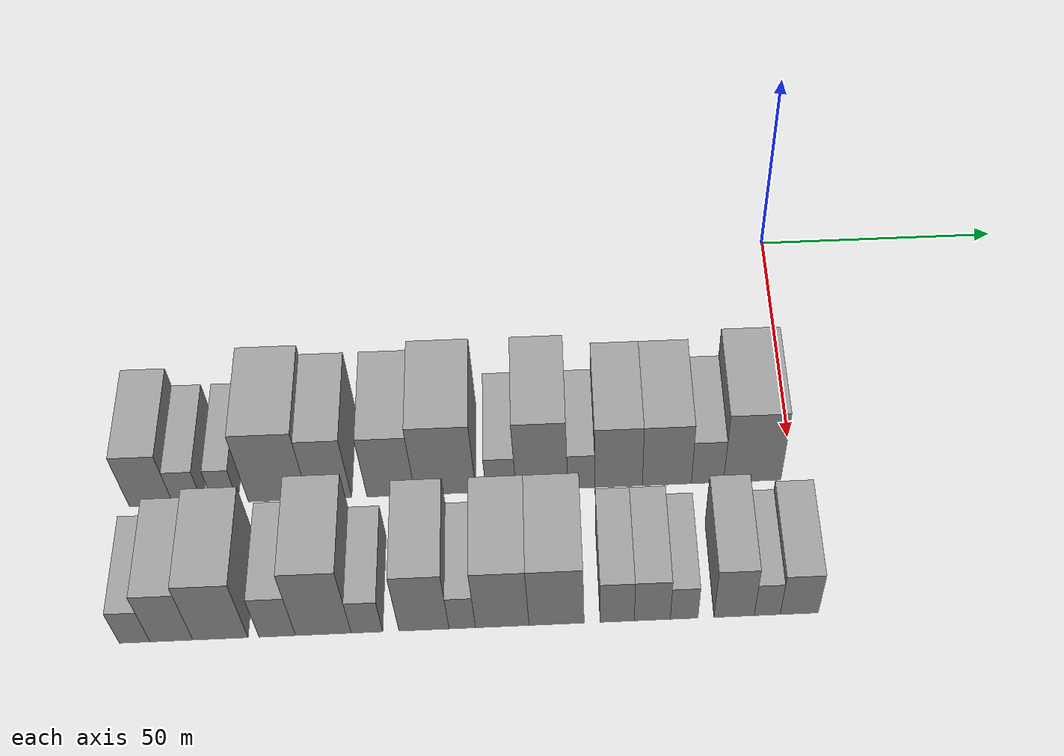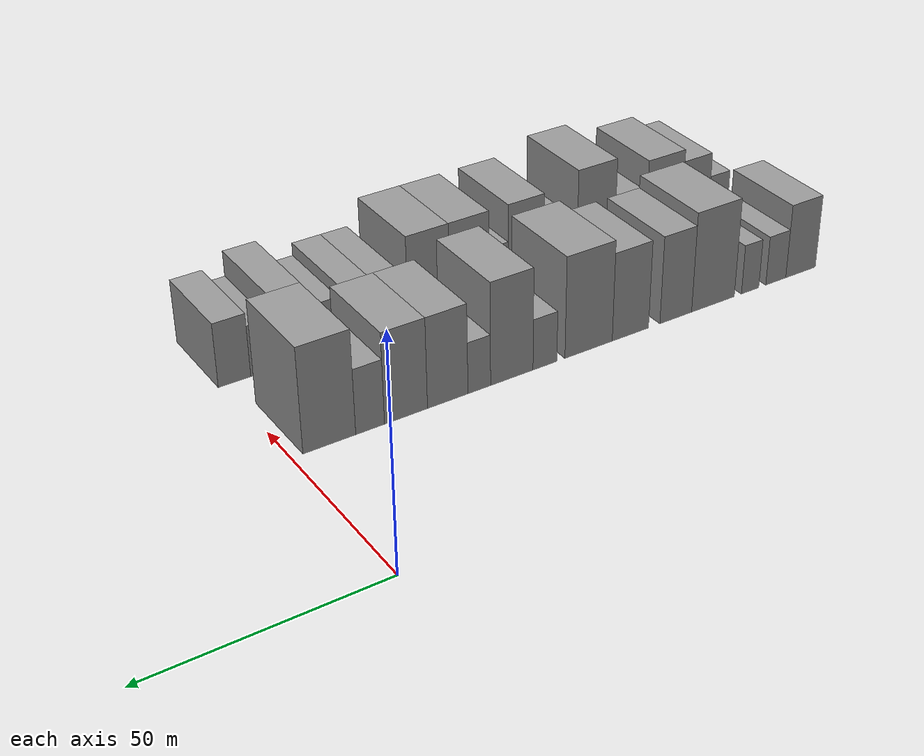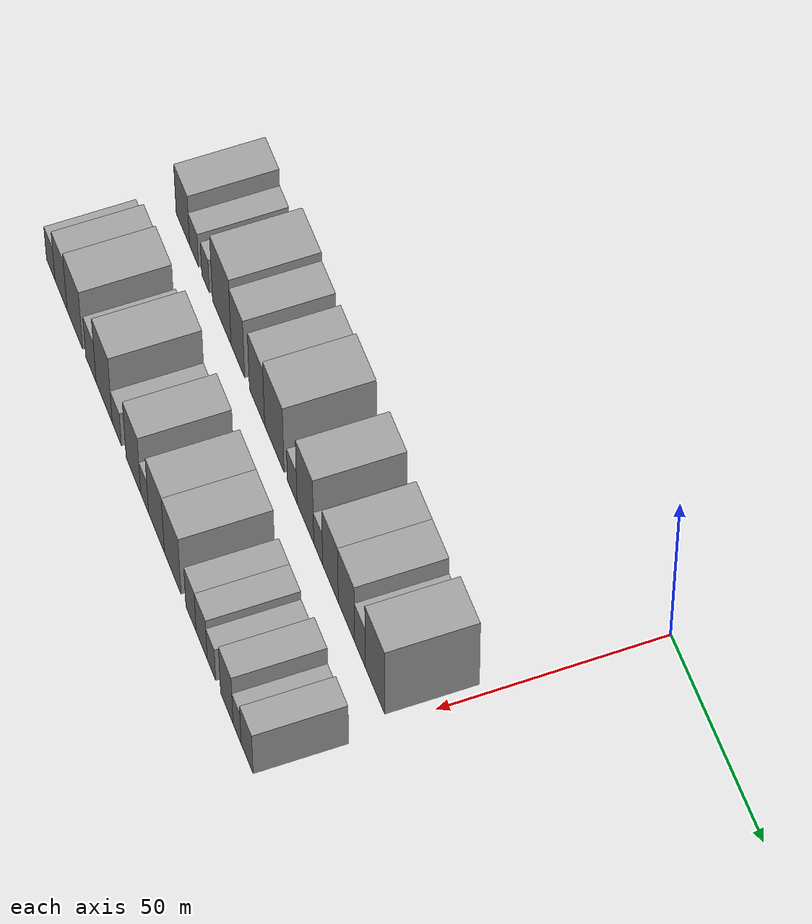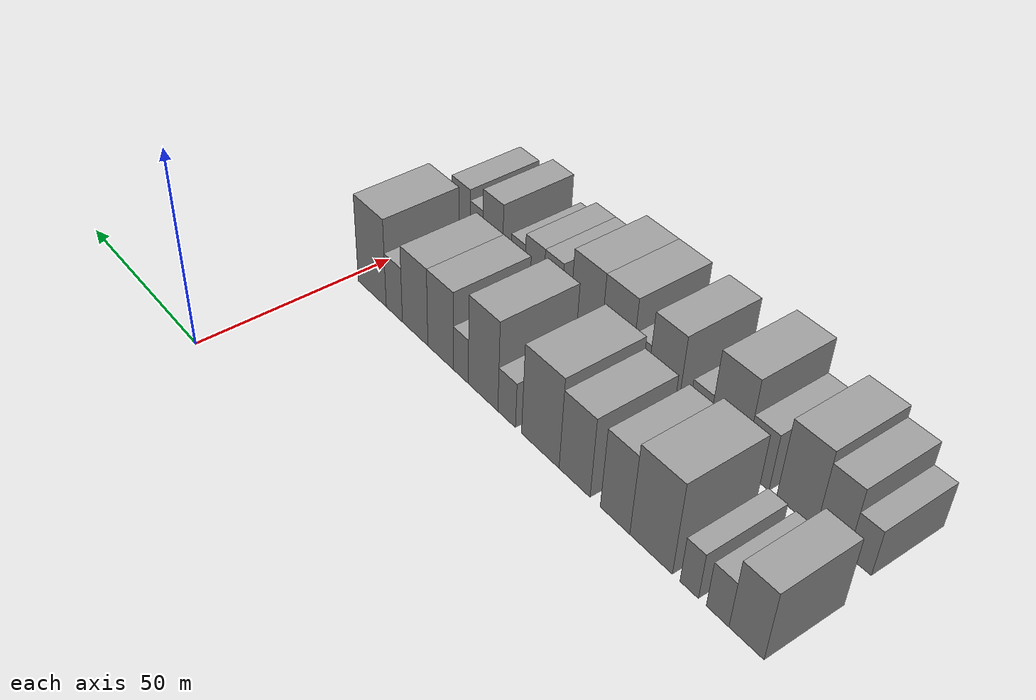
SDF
<sdf version="1.6">
 <world name="default">
  <model name="building_13">
   <static>1</static>
   <pose>50.0000 -125.9835 0 0.000000 0.000000 0.000000</pose>
   <link name="link">
    <pose>0 0 9.00 0 0 0</pose>
    <collision name="collision"><geometry><box><size>20.0000 8.5806 18.0000</size></box></geometry></collision>
    <visual name="visual">
     <cast_shadows>0</cast_shadows>
     <geometry><box><size>20.0000 8.5806 18.0000</size></box></geometry>
     <material>
      <script>
       <uri>model://grey_wall/materials/scripts</uri>
       <uri>model://grey_wall/materials/textures</uri>
       <name>vrc/grey_wall</name>
      </script>
     </material>
    </visual>
   </link>
  </model>
  <model name="building_14">
   <static>1</static>
   <pose>50.0000 -118.8375 0 0.000000 0.000000 0.000000</pose>
   <link name="link">
    <pose>0 0 6.00 0 0 0</pose>
    <collision name="collision"><geometry><box><size>20.0000 5.7114 12.0000</size></box></geometry></collision>
    <visual name="visual">
     <cast_shadows>0</cast_shadows>
     <geometry><box><size>20.0000 5.7114 12.0000</size></box></geometry>
     <material>
      <script>
       <uri>model://grey_wall/materials/scripts</uri>
       <uri>model://grey_wall/materials/textures</uri>
       <name>vrc/grey_wall</name>
      </script>
     </material>
    </visual>
   </link>
  </model>
  <model name="building_15">
   <static>1</static>
   <pose>50.0000 -111.5586 0 0.000000 0.000000 0.000000</pose>
   <link name="link">
    <pose>0 0 6.00 0 0 0</pose>
    <collision name="collision"><geometry><box><size>20.0000 4.8464 12.0000</size></box></geometry></collision>
    <visual name="visual">
     <cast_shadows>0</cast_shadows>
     <geometry><box><size>20.0000 4.8464 12.0000</size></box></geometry>
     <material>
      <script>
       <uri>model://grey_wall/materials/scripts</uri>
       <uri>model://grey_wall/materials/textures</uri>
       <name>vrc/grey_wall</name>
      </script>
     </material>
    </visual>
   </link>
  </model>
  <model name="building_16">
   <static>1</static>
   <pose>50.0000 -101.2901 0 0.000000 0.000000 0.000000</pose>
   <link name="link">
    <pose>0 0 12.00 0 0 0</pose>
    <collision name="collision"><geometry><box><size>20.0000 11.6907 24.0000</size></box></geometry></collision>
    <visual name="visual">
     <cast_shadows>0</cast_shadows>
     <geometry><box><size>20.0000 11.6907 24.0000</size></box></geometry>
     <material>
      <script>
       <uri>model://grey_wall/materials/scripts</uri>
       <uri>model://grey_wall/materials/textures</uri>
       <name>vrc/grey_wall</name>
      </script>
     </material>
    </visual>
   </link>
  </model>
  <model name="building_17">
   <static>1</static>
   <pose>50.0000 -91.2035 0 0.000000 0.000000 0.000000</pose>
   <link name="link">
    <pose>0 0 10.50 0 0 0</pose>
    <collision name="collision"><geometry><box><size>20.0000 8.4825 21.0000</size></box></geometry></collision>
    <visual name="visual">
     <cast_shadows>0</cast_shadows>
     <geometry><box><size>20.0000 8.4825 21.0000</size></box></geometry>
     <material>
      <script>
       <uri>model://grey_wall/materials/scripts</uri>
       <uri>model://grey_wall/materials/textures</uri>
       <name>vrc/grey_wall</name>
      </script>
     </material>
    </visual>
   </link>
  </model>
  <model name="building_18">
   <static>1</static>
   <pose>50.0000 -79.2576 0 0.000000 0.000000 0.000000</pose>
   <link name="link">
    <pose>0 0 10.50 0 0 0</pose>
    <collision name="collision"><geometry><box><size>20.0000 9.4094 21.0000</size></box></geometry></collision>
    <visual name="visual">
     <cast_shadows>0</cast_shadows>
     <geometry><box><size>20.0000 9.4094 21.0000</size></box></geometry>
     <material>
      <script>
       <uri>model://grey_wall/materials/scripts</uri>
       <uri>model://grey_wall/materials/textures</uri>
       <name>vrc/grey_wall</name>
      </script>
     </material>
    </visual>
   </link>
  </model>
  <model name="building_19">
   <static>1</static>
   <pose>50.0000 -68.5814 0 0.000000 0.000000 0.000000</pose>
   <link name="link">
    <pose>0 0 12.00 0 0 0</pose>
    <collision name="collision"><geometry><box><size>20.0000 11.9430 24.0000</size></box></geometry></collision>
    <visual name="visual">
     <cast_shadows>0</cast_shadows>
     <geometry><box><size>20.0000 11.9430 24.0000</size></box></geometry>
     <material>
      <script>
       <uri>model://grey_wall/materials/scripts</uri>
       <uri>model://grey_wall/materials/textures</uri>
       <name>vrc/grey_wall</name>
      </script>
     </material>
    </visual>
   </link>
  </model>
  <model name="building_20">
   <static>1</static>
   <pose>50.0000 -57.6788 0 0.000000 0.000000 0.000000</pose>
   <link name="link">
    <pose>0 0 6.00 0 0 0</pose>
    <collision name="collision"><geometry><box><size>20.0000 5.8621 12.0000</size></box></geometry></collision>
    <visual name="visual">
     <cast_shadows>0</cast_shadows>
     <geometry><box><size>20.0000 5.8621 12.0000</size></box></geometry>
     <material>
      <script>
       <uri>model://grey_wall/materials/scripts</uri>
       <uri>model://grey_wall/materials/textures</uri>
       <name>vrc/grey_wall</name>
      </script>
     </material>
    </visual>
   </link>
  </model>
  <model name="building_21">
   <static>1</static>
   <pose>50.0000 -49.6550 0 0.000000 0.000000 0.000000</pose>
   <link name="link">
    <pose>0 0 12.00 0 0 0</pose>
    <collision name="collision"><geometry><box><size>20.0000 10.1855 24.0000</size></box></geometry></collision>
    <visual name="visual">
     <cast_shadows>0</cast_shadows>
     <geometry><box><size>20.0000 10.1855 24.0000</size></box></geometry>
     <material>
      <script>
       <uri>model://grey_wall/materials/scripts</uri>
       <uri>model://grey_wall/materials/textures</uri>
       <name>vrc/grey_wall</name>
      </script>
     </material>
    </visual>
   </link>
  </model>
  <model name="building_22">
   <static>1</static>
   <pose>50.0000 -41.8930 0 0.000000 0.000000 0.000000</pose>
   <link name="link">
    <pose>0 0 6.00 0 0 0</pose>
    <collision name="collision"><geometry><box><size>20.0000 5.3385 12.0000</size></box></geometry></collision>
    <visual name="visual">
     <cast_shadows>0</cast_shadows>
     <geometry><box><size>20.0000 5.3385 12.0000</size></box></geometry>
     <material>
      <script>
       <uri>model://grey_wall/materials/scripts</uri>
       <uri>model://grey_wall/materials/textures</uri>
       <name>vrc/grey_wall</name>
      </script>
     </material>
    </visual>
   </link>
  </model>
  <model name="building_23">
   <static>1</static>
   <pose>50.0000 -34.5507 0 0.000000 0.000000 0.000000</pose>
   <link name="link">
    <pose>0 0 10.50 0 0 0</pose>
    <collision name="collision"><geometry><box><size>20.0000 9.3463 21.0000</size></box></geometry></collision>
    <visual name="visual">
     <cast_shadows>0</cast_shadows>
     <geometry><box><size>20.0000 9.3463 21.0000</size></box></geometry>
     <material>
      <script>
       <uri>model://grey_wall/materials/scripts</uri>
       <uri>model://grey_wall/materials/textures</uri>
       <name>vrc/grey_wall</name>
      </script>
     </material>
    </visual>
   </link>
  </model>
  <model name="building_24">
   <static>1</static>
   <pose>50.0000 -25.0386 0 0.000000 0.000000 0.000000</pose>
   <link name="link">
    <pose>0 0 10.50 0 0 0</pose>
    <collision name="collision"><geometry><box><size>20.0000 9.6778 21.0000</size></box></geometry></collision>
    <visual name="visual">
     <cast_shadows>0</cast_shadows>
     <geometry><box><size>20.0000 9.6778 21.0000</size></box></geometry>
     <material>
      <script>
       <uri>model://grey_wall/materials/scripts</uri>
       <uri>model://grey_wall/materials/textures</uri>
       <name>vrc/grey_wall</name>
      </script>
     </material>
    </visual>
   </link>
  </model>
  <model name="building_25">
   <static>1</static>
   <pose>50.0000 -17.0260 0 0.000000 0.000000 0.000000</pose>
   <link name="link">
    <pose>0 0 7.50 0 0 0</pose>
    <collision name="collision"><geometry><box><size>20.0000 6.3474 15.0000</size></box></geometry></collision>
    <visual name="visual">
     <cast_shadows>0</cast_shadows>
     <geometry><box><size>20.0000 6.3474 15.0000</size></box></geometry>
     <material>
      <script>
       <uri>model://grey_wall/materials/scripts</uri>
       <uri>model://grey_wall/materials/textures</uri>
       <name>vrc/grey_wall</name>
      </script>
     </material>
    </visual>
   </link>
  </model>
  <model name="building_26">
   <static>1</static>
   <pose>50.0000 -8.1673 0 0.000000 0.000000 0.000000</pose>
   <link name="link">
    <pose>0 0 12.00 0 0 0</pose>
    <collision name="collision"><geometry><box><size>20.0000 11.3700 24.0000</size></box></geometry></collision>
    <visual name="visual">
     <cast_shadows>0</cast_shadows>
     <geometry><box><size>20.0000 11.3700 24.0000</size></box></geometry>
     <material>
      <script>
       <uri>model://grey_wall/materials/scripts</uri>
       <uri>model://grey_wall/materials/textures</uri>
       <name>vrc/grey_wall</name>
      </script>
     </material>
    </visual>
   </link>
  </model>
  <model name="building_74">
   <static>1</static>
   <pose>79.0000 -125.7830 0 0.000000 0.000000 0.000000</pose>
   <link name="link">
    <pose>0 0 6.00 0 0 0</pose>
    <collision name="collision"><geometry><box><size>20.0000 5.6460 12.0000</size></box></geometry></collision>
    <visual name="visual">
     <cast_shadows>0</cast_shadows>
     <geometry><box><size>20.0000 5.6460 12.0000</size></box></geometry>
     <material>
      <script>
       <uri>model://grey_wall/materials/scripts</uri>
       <uri>model://grey_wall/materials/textures</uri>
       <name>vrc/grey_wall</name>
      </script>
     </material>
    </visual>
   </link>
  </model>
  <model name="building_75">
   <static>1</static>
   <pose>79.0000 -119.0131 0 0.000000 0.000000 0.000000</pose>
   <link name="link">
    <pose>0 0 9.00 0 0 0</pose>
    <collision name="collision"><geometry><box><size>20.0000 7.8937 18.0000</size></box></geometry></collision>
    <visual name="visual">
     <cast_shadows>0</cast_shadows>
     <geometry><box><size>20.0000 7.8937 18.0000</size></box></geometry>
     <material>
      <script>
       <uri>model://grey_wall/materials/scripts</uri>
       <uri>model://grey_wall/materials/textures</uri>
       <name>vrc/grey_wall</name>
      </script>
     </material>
    </visual>
   </link>
  </model>
  <model name="building_76">
   <static>1</static>
   <pose>79.0000 -109.9778 0 0.000000 0.000000 0.000000</pose>
   <link name="link">
    <pose>0 0 10.50 0 0 0</pose>
    <collision name="collision"><geometry><box><size>20.0000 10.1770 21.0000</size></box></geometry></collision>
    <visual name="visual">
     <cast_shadows>0</cast_shadows>
     <geometry><box><size>20.0000 10.1770 21.0000</size></box></geometry>
     <material>
      <script>
       <uri>model://grey_wall/materials/scripts</uri>
       <uri>model://grey_wall/materials/textures</uri>
       <name>vrc/grey_wall</name>
      </script>
     </material>
    </visual>
   </link>
  </model>
  <model name="building_77">
   <static>1</static>
   <pose>79.0000 -99.5044 0 0.000000 0.000000 0.000000</pose>
   <link name="link">
    <pose>0 0 7.50 0 0 0</pose>
    <collision name="collision"><geometry><box><size>20.0000 6.7697 15.0000</size></box></geometry></collision>
    <visual name="visual">
     <cast_shadows>0</cast_shadows>
     <geometry><box><size>20.0000 6.7697 15.0000</size></box></geometry>
     <material>
      <script>
       <uri>model://grey_wall/materials/scripts</uri>
       <uri>model://grey_wall/materials/textures</uri>
       <name>vrc/grey_wall</name>
      </script>
     </material>
    </visual>
   </link>
  </model>
  <model name="building_78">
   <static>1</static>
   <pose>79.0000 -90.9655 0 0.000000 0.000000 0.000000</pose>
   <link name="link">
    <pose>0 0 12.00 0 0 0</pose>
    <collision name="collision"><geometry><box><size>20.0000 10.3080 24.0000</size></box></geometry></collision>
    <visual name="visual">
     <cast_shadows>0</cast_shadows>
     <geometry><box><size>20.0000 10.3080 24.0000</size></box></geometry>
     <material>
      <script>
       <uri>model://grey_wall/materials/scripts</uri>
       <uri>model://grey_wall/materials/textures</uri>
       <name>vrc/grey_wall</name>
      </script>
     </material>
    </visual>
   </link>
  </model>
  <model name="building_79">
   <static>1</static>
   <pose>79.0000 -82.8894 0 0.000000 0.000000 0.000000</pose>
   <link name="link">
    <pose>0 0 6.00 0 0 0</pose>
    <collision name="collision"><geometry><box><size>20.0000 5.8443 12.0000</size></box></geometry></collision>
    <visual name="visual">
     <cast_shadows>0</cast_shadows>
     <geometry><box><size>20.0000 5.8443 12.0000</size></box></geometry>
     <material>
      <script>
       <uri>model://grey_wall/materials/scripts</uri>
       <uri>model://grey_wall/materials/textures</uri>
       <name>vrc/grey_wall</name>
      </script>
     </material>
    </visual>
   </link>
  </model>
  <model name="building_80">
   <static>1</static>
   <pose>79.0000 -72.3171 0 0.000000 0.000000 0.000000</pose>
   <link name="link">
    <pose>0 0 10.50 0 0 0</pose>
    <collision name="collision"><geometry><box><size>20.0000 9.3003 21.0000</size></box></geometry></collision>
    <visual name="visual">
     <cast_shadows>0</cast_shadows>
     <geometry><box><size>20.0000 9.3003 21.0000</size></box></geometry>
     <material>
      <script>
       <uri>model://grey_wall/materials/scripts</uri>
       <uri>model://grey_wall/materials/textures</uri>
       <name>vrc/grey_wall</name>
      </script>
     </material>
    </visual>
   </link>
  </model>
  <model name="building_81">
   <static>1</static>
   <pose>79.0000 -65.2013 0 0.000000 0.000000 0.000000</pose>
   <link name="link">
    <pose>0 0 6.00 0 0 0</pose>
    <collision name="collision"><geometry><box><size>20.0000 4.9313 12.0000</size></box></geometry></collision>
    <visual name="visual">
     <cast_shadows>0</cast_shadows>
     <geometry><box><size>20.0000 4.9313 12.0000</size></box></geometry>
     <material>
      <script>
       <uri>model://grey_wall/materials/scripts</uri>
       <uri>model://grey_wall/materials/textures</uri>
       <name>vrc/grey_wall</name>
      </script>
     </material>
    </visual>
   </link>
  </model>
  <model name="building_82">
   <static>1</static>
   <pose>79.0000 -57.7597 0 0.000000 0.000000 0.000000</pose>
   <link name="link">
    <pose>0 0 10.50 0 0 0</pose>
    <collision name="collision"><geometry><box><size>20.0000 9.9521 21.0000</size></box></geometry></collision>
    <visual name="visual">
     <cast_shadows>0</cast_shadows>
     <geometry><box><size>20.0000 9.9521 21.0000</size></box></geometry>
     <material>
      <script>
       <uri>model://grey_wall/materials/scripts</uri>
       <uri>model://grey_wall/materials/textures</uri>
       <name>vrc/grey_wall</name>
      </script>
     </material>
    </visual>
   </link>
  </model>
  <model name="building_83">
   <static>1</static>
   <pose>79.0000 -47.6495 0 0.000000 0.000000 0.000000</pose>
   <link name="link">
    <pose>0 0 10.50 0 0 0</pose>
    <collision name="collision"><geometry><box><size>20.0000 10.2684 21.0000</size></box></geometry></collision>
    <visual name="visual">
     <cast_shadows>0</cast_shadows>
     <geometry><box><size>20.0000 10.2684 21.0000</size></box></geometry>
     <material>
      <script>
       <uri>model://grey_wall/materials/scripts</uri>
       <uri>model://grey_wall/materials/textures</uri>
       <name>vrc/grey_wall</name>
      </script>
     </material>
    </visual>
   </link>
  </model>
  <model name="building_84">
   <static>1</static>
   <pose>79.0000 -36.3296 0 0.000000 0.000000 0.000000</pose>
   <link name="link">
    <pose>0 0 7.50 0 0 0</pose>
    <collision name="collision"><geometry><box><size>20.0000 6.3713 15.0000</size></box></geometry></collision>
    <visual name="visual">
     <cast_shadows>0</cast_shadows>
     <geometry><box><size>20.0000 6.3713 15.0000</size></box></geometry>
     <material>
      <script>
       <uri>model://grey_wall/materials/scripts</uri>
       <uri>model://grey_wall/materials/textures</uri>
       <name>vrc/grey_wall</name>
      </script>
     </material>
    </visual>
   </link>
  </model>
  <model name="building_85">
   <static>1</static>
   <pose>79.0000 -29.7677 0 0.000000 0.000000 0.000000</pose>
   <link name="link">
    <pose>0 0 7.50 0 0 0</pose>
    <collision name="collision"><geometry><box><size>20.0000 6.7526 15.0000</size></box></geometry></collision>
    <visual name="visual">
     <cast_shadows>0</cast_shadows>
     <geometry><box><size>20.0000 6.7526 15.0000</size></box></geometry>
     <material>
      <script>
       <uri>model://grey_wall/materials/scripts</uri>
       <uri>model://grey_wall/materials/textures</uri>
       <name>vrc/grey_wall</name>
      </script>
     </material>
    </visual>
   </link>
  </model>
  <model name="building_86">
   <static>1</static>
   <pose>79.0000 -23.8075 0 0.000000 0.000000 0.000000</pose>
   <link name="link">
    <pose>0 0 6.00 0 0 0</pose>
    <collision name="collision"><geometry><box><size>20.0000 5.1678 12.0000</size></box></geometry></collision>
    <visual name="visual">
     <cast_shadows>0</cast_shadows>
     <geometry><box><size>20.0000 5.1678 12.0000</size></box></geometry>
     <material>
      <script>
       <uri>model://grey_wall/materials/scripts</uri>
       <uri>model://grey_wall/materials/textures</uri>
       <name>vrc/grey_wall</name>
      </script>
     </material>
    </visual>
   </link>
  </model>
  <model name="building_87">
   <static>1</static>
   <pose>79.0000 -14.4470 0 0.000000 0.000000 0.000000</pose>
   <link name="link">
    <pose>0 0 9.00 0 0 0</pose>
    <collision name="collision"><geometry><box><size>20.0000 7.5531 18.0000</size></box></geometry></collision>
    <visual name="visual">
     <cast_shadows>0</cast_shadows>
     <geometry><box><size>20.0000 7.5531 18.0000</size></box></geometry>
     <material>
      <script>
       <uri>model://grey_wall/materials/scripts</uri>
       <uri>model://grey_wall/materials/textures</uri>
       <name>vrc/grey_wall</name>
      </script>
     </material>
    </visual>
   </link>
  </model>
  <model name="building_88">
   <static>1</static>
   <pose>79.0000 -8.2355 0 0.000000 0.000000 0.000000</pose>
   <link name="link">
    <pose>0 0 6.00 0 0 0</pose>
    <collision name="collision"><geometry><box><size>20.0000 4.8699 12.0000</size></box></geometry></collision>
    <visual name="visual">
     <cast_shadows>0</cast_shadows>
     <geometry><box><size>20.0000 4.8699 12.0000</size></box></geometry>
     <material>
      <script>
       <uri>model://grey_wall/materials/scripts</uri>
       <uri>model://grey_wall/materials/textures</uri>
       <name>vrc/grey_wall</name>
      </script>
     </material>
    </visual>
   </link>
  </model>
  <model name="building_89">
   <static>1</static>
   <pose>79.0000 -2.2141 0 0.000000 0.000000 0.000000</pose>
   <link name="link">
    <pose>0 0 7.50 0 0 0</pose>
    <collision name="collision"><geometry><box><size>20.0000 7.1731 15.0000</size></box></geometry></collision>
    <visual name="visual">
     <cast_shadows>0</cast_shadows>
     <geometry><box><size>20.0000 7.1731 15.0000</size></box></geometry>
     <material>
      <script>
       <uri>model://grey_wall/materials/scripts</uri>
       <uri>model://grey_wall/materials/textures</uri>
       <name>vrc/grey_wall</name>
      </script>
     </material>
    </visual>
   </link>
  </model>
 </world>
</sdf>
